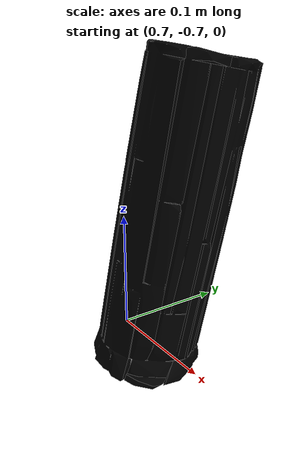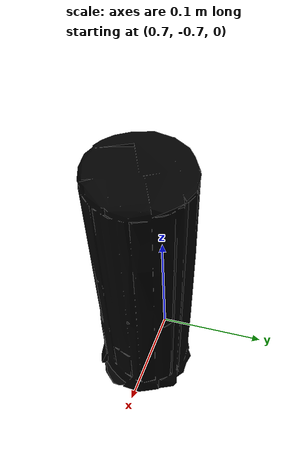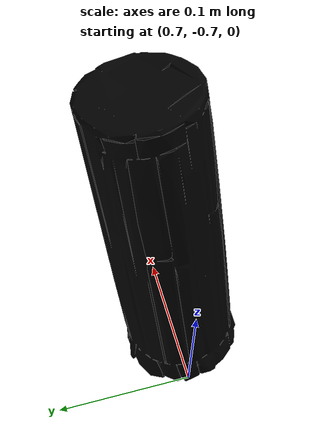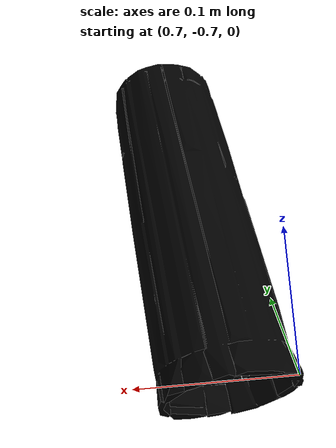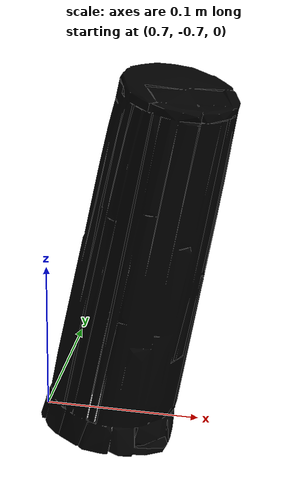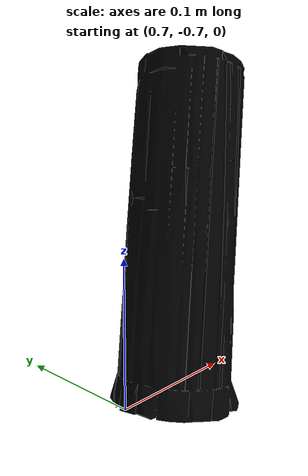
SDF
<?xml version="1.0"?>
<sdf version="1.4">
  <model name="001_chips_can_textured">
    <pose>0.763550 -0.724669 -0.005820 -1.571494 -0.000442 2.018303</pose>
    <link name="body">
      <inertial>
        <mass> 1.0 </mass>
        <pose>0 0 0 0 0 0</pose>
        <inertia>
          <ixx>0.0012524558212356834</ixx>
          <ixy>0.0</ixy>
          <ixz>0.0</ixz>
          <iyy>0.002144174693715978</iyy>
          <iyz>0.0</iyz>
          <izz>0.002148939068548339</izz>
        </inertia>
      </inertial>
      <visual name="visual">
        <geometry>
          <mesh>
            <uri>model://001_chips_can_textured/textured.dae</uri>
          </mesh>
        </geometry>
        <pose>0.0705638176532202 0.006062332462709392 0.01878449154460844 1.5775121608545124 -1.3677236287137549 -1.5781844468577306</pose>
      </visual>
      <collision name="collision">
        <geometry>
          <mesh>
            <uri>model://001_chips_can_textured/textured.col.dae</uri>
          </mesh>
        </geometry>
        <max_contacts>10</max_contacts>
        <surface>
          <friction>
            <ode>
              <mu>0.8</mu>
              <mu2>0.8</mu2>
              <slip1>0</slip1>
              <slip2>0</slip2>
            </ode>
            <torsional>
              <ode/>
            </torsional>
          </friction>
          <contact>
            <ode>
              <kp>1000000.0</kp>
              <kd>1.0</kd>
              <max_vel>0.0</max_vel>
            </ode>
          </contact>
        </surface>
        <pose>0.0705638176532202 0.006062332462709392 0.01878449154460844 1.5775121608545124 -1.3677236287137549 -1.5781844468577306</pose>
      </collision>
    </link>
  </model>
</sdf>
